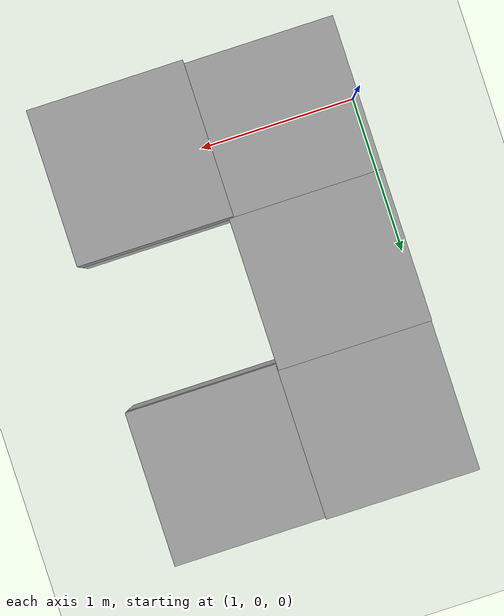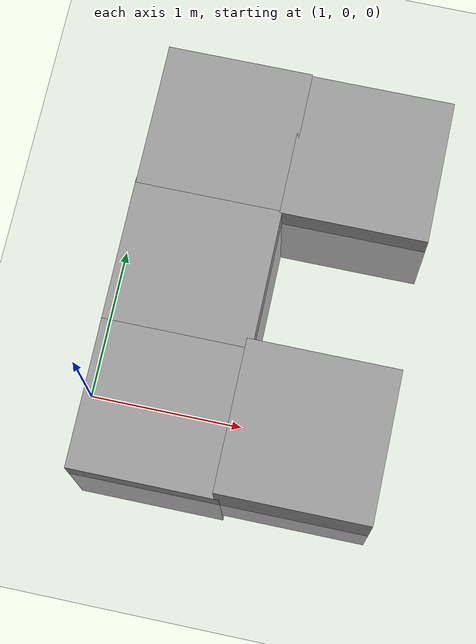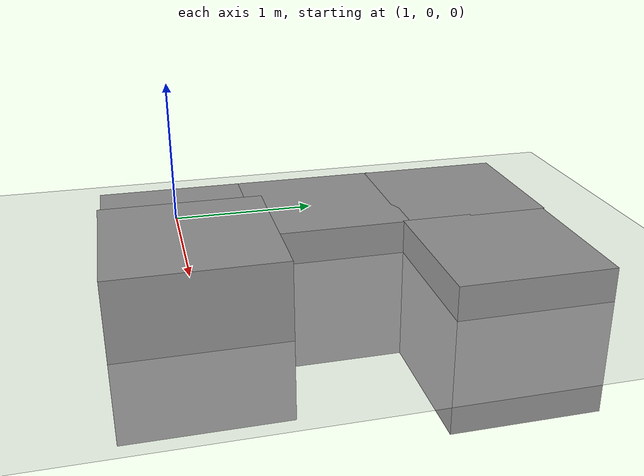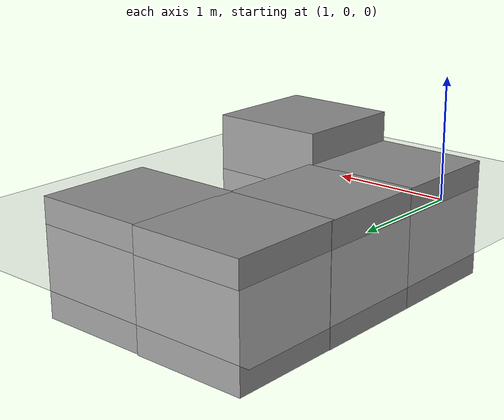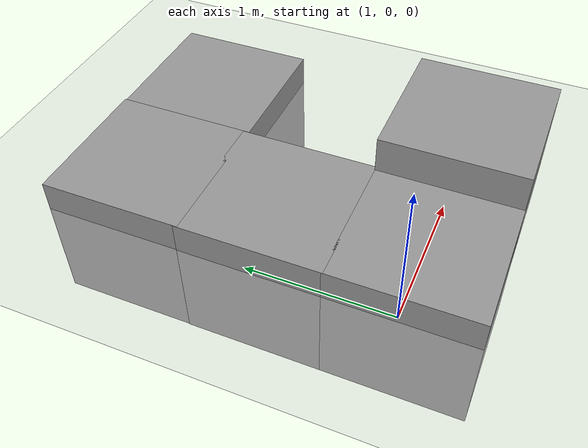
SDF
<sdf version="1.7">
 <world name="sample">
  <plugin name="voxblox_ground_truth_plugin" filename="libvoxblox_ground_truth_plugin.so"/>
  <light name="sun" type="directional">
   <pose>0 0 10 0 -0 0</pose>
   <diffuse>0.8 0.8 0.8 1</diffuse>
   <specular>0.2 0.2 0.2 1</specular>
   <attenuation>
    <range>1000</range>
    <constant>0.9</constant>
    <linear>0.01</linear>
    <quadratic>0.001</quadratic>
   </attenuation>
   <direction>-0.5 0.1 -0.9</direction>
   <spot><inner_angle>0</inner_angle><outer_angle>0</outer_angle><falloff>0</falloff></spot>
  </light>
  <model name="ground_plane">
   <static>1</static>
   <link name="link">
    <collision name="collision">
     <geometry><plane><normal>0 0 1</normal><size>100 100</size></plane></geometry>
     <surface>
      <contact><collide_bitmask>65535</collide_bitmask></contact>
      <friction><ode><mu>100</mu><mu2>50</mu2></ode></friction>
     </surface>
    </collision>
    <visual name="visual">
     <cast_shadows>0</cast_shadows>
     <geometry><plane><normal>0 0 1</normal><size>100 100</size></plane></geometry>
     <material>
      <script><uri>file://media/materials/scripts/gazebo.material</uri><name>Gazebo/Grey</name></script>
     </material>
    </visual>
   </link>
  </model>
  <gravity>0 0 -9.8</gravity>
  <magnetic_field>6e-06 2.3e-05 -4.2e-05</magnetic_field>
  <atmosphere type="adiabatic"/>
  <physics type="ode">
   <max_step_size>0.001</max_step_size>
   <real_time_factor>1</real_time_factor>
   <real_time_update_rate>1000</real_time_update_rate>
  </physics>
  <scene><ambient>0.4 0.4 0.4 1</ambient><background>0.7 0.7 0.7 1</background><shadows>1</shadows></scene>
  <spherical_coordinates>
   <surface_model>EARTH_WGS84</surface_model>
   <latitude_deg>0</latitude_deg>
   <longitude_deg>0</longitude_deg>
   <elevation>0</elevation>
   <heading_deg>0</heading_deg>
  </spherical_coordinates>
  <model name="unit_box">
   <pose>1.47171 -0.019908 -0.281512 0 -0 0</pose>
   <static>1</static>
   <link name="link">
    <inertial>
     <mass>1</mass>
     <inertia>
      <ixx>0.166667</ixx>
      <ixy>0</ixy>
      <ixz>0</ixz>
      <iyy>0.166667</iyy>
      <iyz>0</iyz>
      <izz>0.166667</izz>
     </inertia>
    </inertial>
    <collision name="collision"><geometry><box><size>1 1 1</size></box></geometry></collision>
    <visual name="visual">
     <geometry><box><size>1 1 1</size></box></geometry>
     <material>
      <script><name>Gazebo/Grey</name><uri>file://media/materials/scripts/gazebo.material</uri></script>
     </material>
    </visual>
   </link>
  </model>
  <model name="unit_box_clone">
   <static>1</static>
   <pose>2.4402 -0.017973 -0.02107 0 -0 0</pose>
   <link name="link">
    <inertial>
     <mass>1</mass>
     <inertia>
      <ixx>0.166667</ixx>
      <ixy>0</ixy>
      <ixz>0</ixz>
      <iyy>0.166667</iyy>
      <iyz>0</iyz>
      <izz>0.166667</izz>
     </inertia>
    </inertial>
    <collision name="collision"><geometry><box><size>1 1 1</size></box></geometry></collision>
    <visual name="visual">
     <geometry><box><size>1 1 1</size></box></geometry>
     <material>
      <script><name>Gazebo/Grey</name><uri>file://media/materials/scripts/gazebo.material</uri></script>
     </material>
    </visual>
   </link>
  </model>
  <model name="unit_box_clone_0">
   <static>1</static>
   <pose>1.47173 0.96732 -0.281512 0 -0 0</pose>
   <link name="link">
    <inertial>
     <mass>1</mass>
     <inertia>
      <ixx>0.166667</ixx>
      <ixy>0</ixy>
      <ixz>0</ixz>
      <iyy>0.166667</iyy>
      <iyz>0</iyz>
      <izz>0.166667</izz>
     </inertia>
    </inertial>
    <collision name="collision"><geometry><box><size>1 1 1</size></box></geometry></collision>
    <visual name="visual">
     <geometry><box><size>1 1 1</size></box></geometry>
     <material>
      <script><name>Gazebo/Grey</name><uri>file://media/materials/scripts/gazebo.material</uri></script>
     </material>
    </visual>
   </link>
  </model>
  <model name="unit_box_clone_0_clone">
   <static>1</static>
   <pose>1.47521 1.93573 -0.281512 0 -0 0</pose>
   <link name="link">
    <inertial>
     <mass>1</mass>
     <inertia>
      <ixx>0.166667</ixx>
      <ixy>0</ixy>
      <ixz>0</ixz>
      <iyy>0.166667</iyy>
      <iyz>0</iyz>
      <izz>0.166667</izz>
     </inertia>
    </inertial>
    <collision name="collision"><geometry><box><size>1 1 1</size></box></geometry></collision>
    <visual name="visual">
     <geometry><box><size>1 1 1</size></box></geometry>
     <material>
      <script><name>Gazebo/Grey</name><uri>file://media/materials/scripts/gazebo.material</uri></script>
     </material>
    </visual>
   </link>
  </model>
  <model name="unit_box_clone_0_clone_clone">
   <static>1</static>
   <pose>2.45568 1.92392 -0.281512 0 -0 0</pose>
   <link name="link">
    <inertial>
     <mass>1</mass>
     <inertia>
      <ixx>0.166667</ixx>
      <ixy>0</ixy>
      <ixz>0</ixz>
      <iyy>0.166667</iyy>
      <iyz>0</iyz>
      <izz>0.166667</izz>
     </inertia>
    </inertial>
    <collision name="collision"><geometry><box><size>1 1 1</size></box></geometry></collision>
    <visual name="visual">
     <geometry><box><size>1 1 1</size></box></geometry>
     <material>
      <script><name>Gazebo/Grey</name><uri>file://media/materials/scripts/gazebo.material</uri></script>
     </material>
    </visual>
   </link>
  </model>
 </world>
</sdf>
